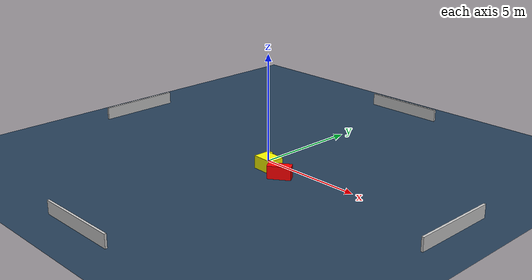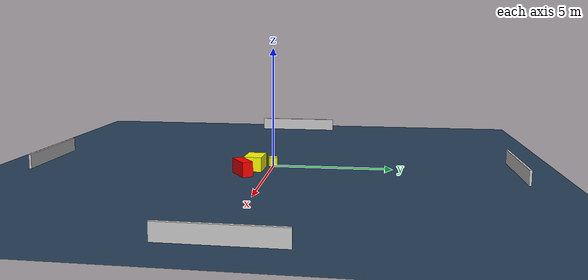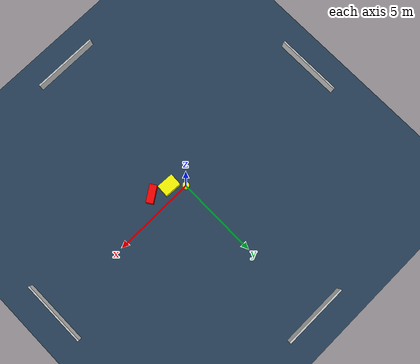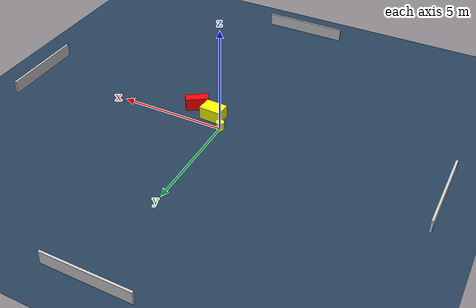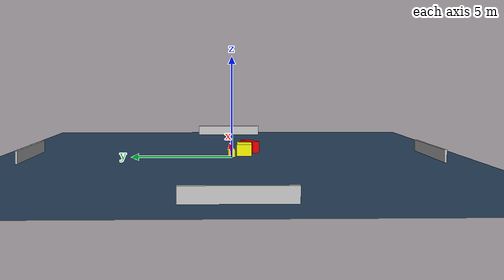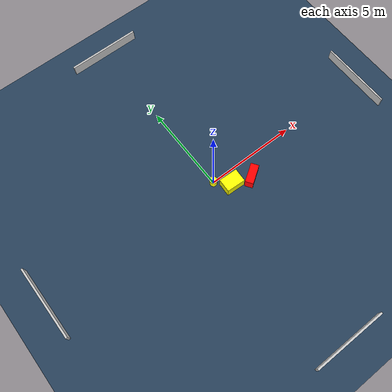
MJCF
<?xml version="1.0" ?>
<mujoco model="generated_environment">
  <option timestep="0.01" integrator="RK4" cone="elliptic"/>
  <default>
    <geom density="1"/>
  </default>
  <asset>
    <texture builtin="gradient" height="3072" name="skybox" rgb1="0.3 0.5 0.7" rgb2="0 0 0" type="skybox" width="512"/>
    <texture builtin="checker" height="300" name="groundplane" rgb1="0.2 0.3 0.4" rgb2="0.1 0.2 0.3" type="2d" width="300"/>
    <material name="groundplane" reflectance="0.2" texrepeat="5 5" texture="groundplane"/>
  </asset>
  <worldbody>
    <light dir="0 0 -1" directional="true" pos="0 0 1.5"/>
    <geom condim="3" friction="0.5 0.005 0.001" material="groundplane" name="floor" pos="0 0 0" size="0 0 0.05" type="plane"/>
    <body name="walls">
      <geom name="wall_1" condim="4" pos="-10.0 0.0 0.3" rgba="0.800000011920929 0.800000011920929 0.800000011920929 1.0" size="0.05 2.0 0.3" type="box"/>
      <geom name="wall_2" condim="4" pos="10.0 0.0 0.3" rgba="0.800000011920929 0.800000011920929 0.800000011920929 1.0" size="0.05 2.0 0.3" type="box"/>
      <geom name="wall_3" condim="4" pos="0.0 -10.0 0.3" rgba="0.800000011920929 0.800000011920929 0.800000011920929 1.0" size="2.0 0.05 0.3" type="box"/>
      <geom name="wall_4" condim="4" pos="0.0 10.0 0.3" rgba="0.800000011920929 0.800000011920929 0.800000011920929 1.0" size="2.0 0.05 0.3" type="box"/>
    </body>
    <body name="robot">
      <joint name="joint_x" type="slide" pos="0 0 0" axis="1 0 0"/>
      <joint name="joint_y" type="slide" pos="0 0 0" axis="0 1 0"/>
      <geom name="robot" type="cylinder" pos="0.0 0.0 0.2" size="0.2 0.2 0.0" mass="5.0" friction="1.0 0.005 0.0001" condim="4" rgba="1.0 1.0 0.0 1.0"/>
    </body>
    <body name="obstacle_1_movable">
      <geom name="obstacle_1_movable" condim="4" pos="0.6905800676797339 -0.6512167342819893 0.3" euler="0 0 87.29211776346159" friction="0.0 0.005 0.001" rgba="1.0 1.0 0.0 1.0" size="0.3695478124387481 0.5147066661975861 0.3" type="box" mass="0.1"/>
      <joint type="free"/>
    </body>
    <body name="obstacle_2_static">
      <geom name="obstacle_2_static" condim="4" pos="1.7265032929379236 -0.9873987895076143 0.3" euler="0 0 303.9581624324627" friction="0.0 0.005 0.001" rgba="1.0 0.0 0.0 1.0" size="0.21870226361851564 0.5367196351396932 0.3" type="box"/>
    </body>
  </worldbody>
  <actuator>
    <motor name="actuator_x" joint="joint_x" gear="1" ctrlrange="-1 1"/>
    <motor name="actuator_y" joint="joint_y" gear="1" ctrlrange="-1 1"/>
  </actuator>
</mujoco>
